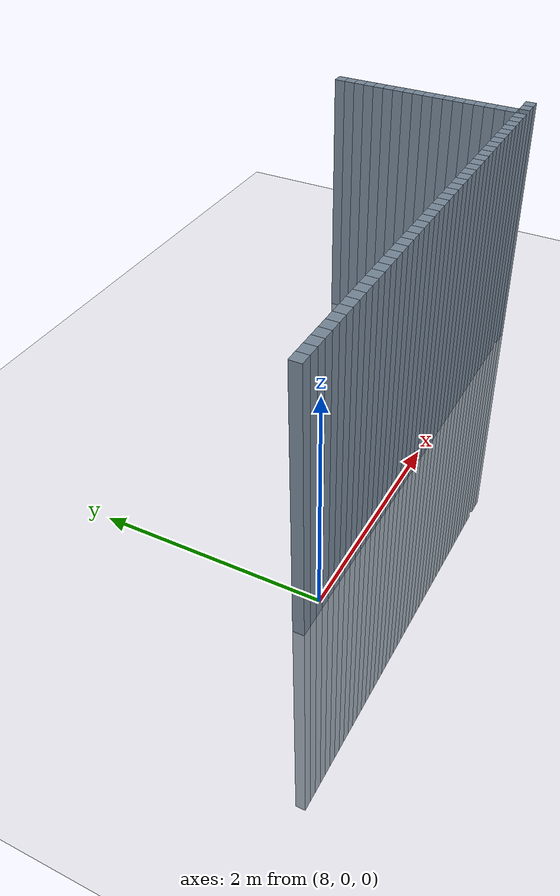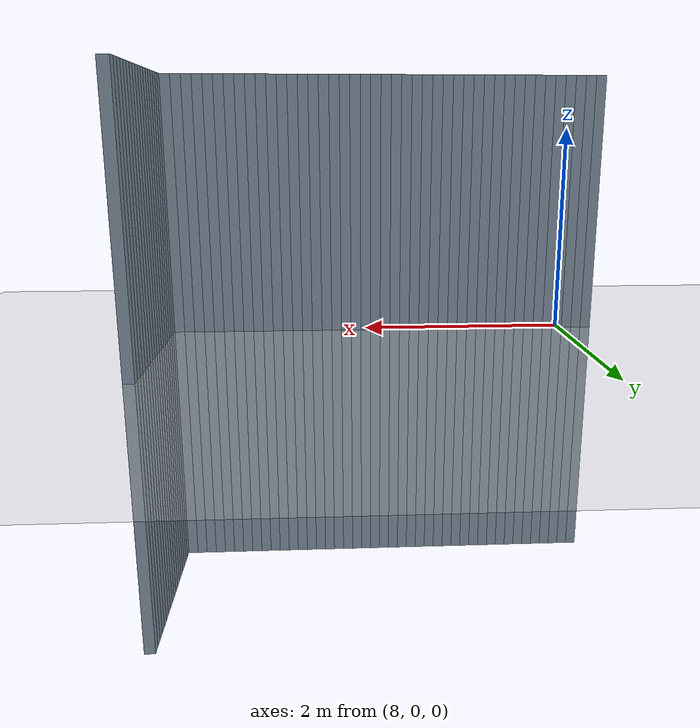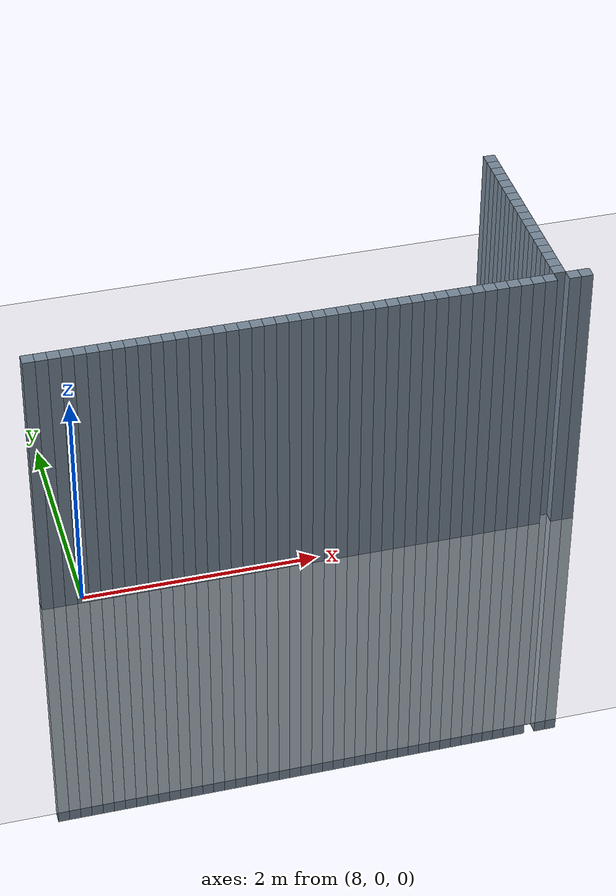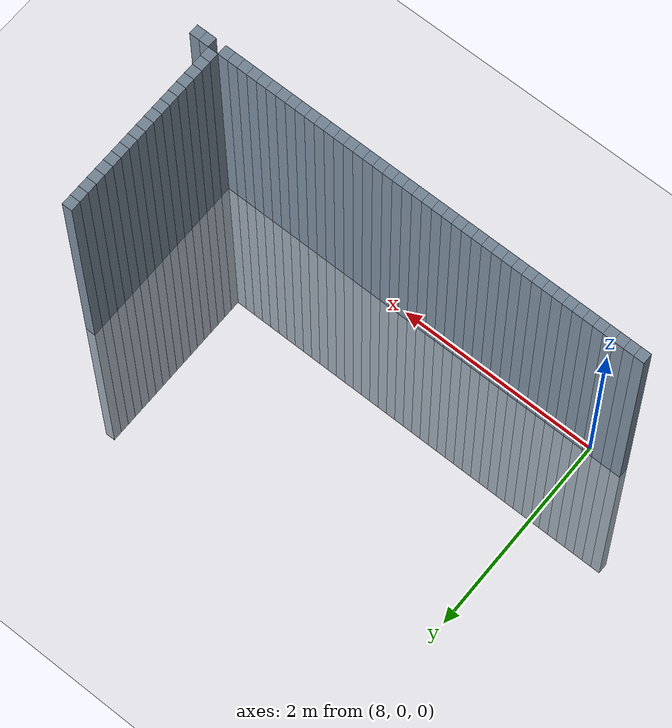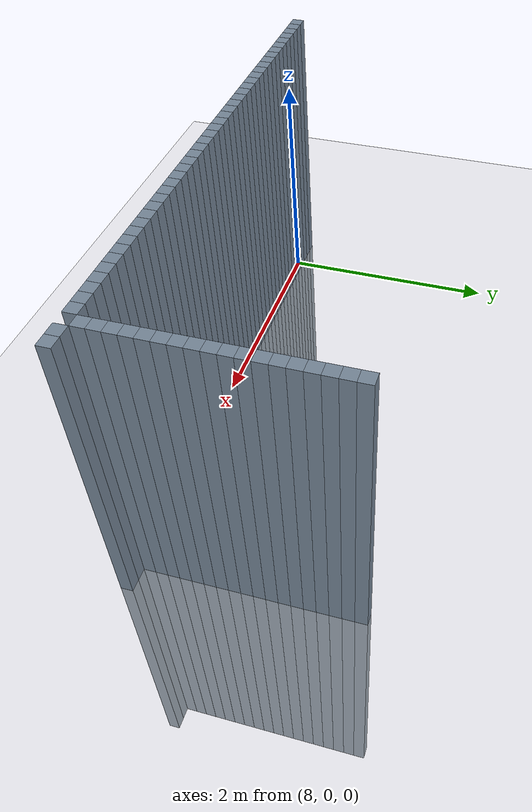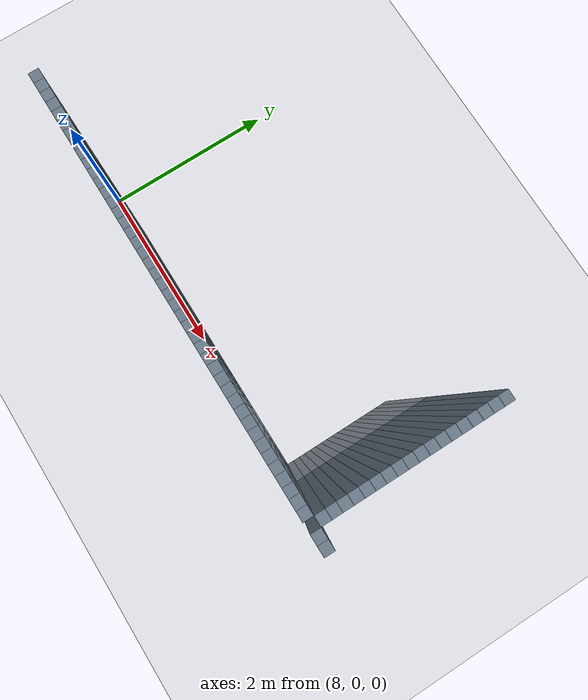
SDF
<sdf version="1.6">
 <world name="default">
  <model name="ground_plane">
   <static>1</static>
   <link name="link">
    <collision name="collision">
     <geometry><plane><normal>0 0 1</normal><size>100 100</size></plane></geometry>
     <surface><friction><ode><mu>100</mu><mu2>50</mu2></ode></friction></surface>
    </collision>
    <visual name="visual">
     <cast_shadows>0</cast_shadows>
     <geometry><plane><normal>0 0 1</normal><size>100 100</size></plane></geometry>
     <material>
      <script><uri>file://media/materials/scripts/gazebo.material</uri><name>Gazebo/Grey</name></script>
     </material>
    </visual>
   </link>
  </model>
  <model name="unit_cylinder_426">
   <static>1</static>
   <pose>7.7 0 0 0 -0 0</pose>
   <link name="link">
    <inertial>
     <mass>1</mass>
     <inertia><ixx>0.145833</ixx><ixy>0</ixy><ixz>0</ixz><iyy>0.145833</iyy><iyz>0</iyz><izz>0.125</izz></inertia>
    </inertial>
    <collision name="collision"><geometry><box><size>0.1 0.1 5</size></box></geometry></collision>
    <visual name="visual">
     <geometry><box><size>0.1 0.1 5</size></box></geometry>
     <material><ambient>0.466667 0.533333 0.6 1</ambient><diffuse>0.466667 0.533333 0.6 1</diffuse></material>
     <material>
      <script><name>Gazebo/Grey</name><uri>file://media/materials/scripts/gazebo.material</uri></script>
     </material>
    </visual>
   </link>
  </model>
  <model name="unit_cylinder_430">
   <static>1</static>
   <pose>7.8 0 0 0 -0 0</pose>
   <link name="link">
    <inertial>
     <mass>1</mass>
     <inertia><ixx>0.145833</ixx><ixy>0</ixy><ixz>0</ixz><iyy>0.145833</iyy><iyz>0</iyz><izz>0.125</izz></inertia>
    </inertial>
    <collision name="collision"><geometry><box><size>0.1 0.1 5</size></box></geometry></collision>
    <visual name="visual">
     <geometry><box><size>0.1 0.1 5</size></box></geometry>
     <material><ambient>0.466667 0.533333 0.6 1</ambient><diffuse>0.466667 0.533333 0.6 1</diffuse></material>
     <material>
      <script><name>Gazebo/Grey</name><uri>file://media/materials/scripts/gazebo.material</uri></script>
     </material>
    </visual>
   </link>
  </model>
  <model name="unit_cylinder_434">
   <static>1</static>
   <pose>7.9 0 0 0 -0 0</pose>
   <link name="link">
    <inertial>
     <mass>1</mass>
     <inertia><ixx>0.145833</ixx><ixy>0</ixy><ixz>0</ixz><iyy>0.145833</iyy><iyz>0</iyz><izz>0.125</izz></inertia>
    </inertial>
    <collision name="collision"><geometry><box><size>0.1 0.1 5</size></box></geometry></collision>
    <visual name="visual">
     <geometry><box><size>0.1 0.1 5</size></box></geometry>
     <material><ambient>0.466667 0.533333 0.6 1</ambient><diffuse>0.466667 0.533333 0.6 1</diffuse></material>
     <material>
      <script><name>Gazebo/Grey</name><uri>file://media/materials/scripts/gazebo.material</uri></script>
     </material>
    </visual>
   </link>
  </model>
  <model name="unit_cylinder_438">
   <static>1</static>
   <pose>8 0 0 0 -0 0</pose>
   <link name="link">
    <inertial>
     <mass>1</mass>
     <inertia><ixx>0.145833</ixx><ixy>0</ixy><ixz>0</ixz><iyy>0.145833</iyy><iyz>0</iyz><izz>0.125</izz></inertia>
    </inertial>
    <collision name="collision"><geometry><box><size>0.1 0.1 5</size></box></geometry></collision>
    <visual name="visual">
     <geometry><box><size>0.1 0.1 5</size></box></geometry>
     <material><ambient>0.466667 0.533333 0.6 1</ambient><diffuse>0.466667 0.533333 0.6 1</diffuse></material>
     <material>
      <script><name>Gazebo/Grey</name><uri>file://media/materials/scripts/gazebo.material</uri></script>
     </material>
    </visual>
   </link>
  </model>
  <model name="unit_cylinder_442">
   <static>1</static>
   <pose>8.1 0 0 0 -0 0</pose>
   <link name="link">
    <inertial>
     <mass>1</mass>
     <inertia><ixx>0.145833</ixx><ixy>0</ixy><ixz>0</ixz><iyy>0.145833</iyy><iyz>0</iyz><izz>0.125</izz></inertia>
    </inertial>
    <collision name="collision"><geometry><box><size>0.1 0.1 5</size></box></geometry></collision>
    <visual name="visual">
     <geometry><box><size>0.1 0.1 5</size></box></geometry>
     <material><ambient>0.466667 0.533333 0.6 1</ambient><diffuse>0.466667 0.533333 0.6 1</diffuse></material>
     <material>
      <script><name>Gazebo/Grey</name><uri>file://media/materials/scripts/gazebo.material</uri></script>
     </material>
    </visual>
   </link>
  </model>
  <model name="unit_cylinder_446">
   <static>1</static>
   <pose>8.2 0 0 0 -0 0</pose>
   <link name="link">
    <inertial>
     <mass>1</mass>
     <inertia><ixx>0.145833</ixx><ixy>0</ixy><ixz>0</ixz><iyy>0.145833</iyy><iyz>0</iyz><izz>0.125</izz></inertia>
    </inertial>
    <collision name="collision"><geometry><box><size>0.1 0.1 5</size></box></geometry></collision>
    <visual name="visual">
     <geometry><box><size>0.1 0.1 5</size></box></geometry>
     <material><ambient>0.466667 0.533333 0.6 1</ambient><diffuse>0.466667 0.533333 0.6 1</diffuse></material>
     <material>
      <script><name>Gazebo/Grey</name><uri>file://media/materials/scripts/gazebo.material</uri></script>
     </material>
    </visual>
   </link>
  </model>
  <model name="unit_cylinder_450">
   <static>1</static>
   <pose>8.3 0 0 0 -0 0</pose>
   <link name="link">
    <inertial>
     <mass>1</mass>
     <inertia><ixx>0.145833</ixx><ixy>0</ixy><ixz>0</ixz><iyy>0.145833</iyy><iyz>0</iyz><izz>0.125</izz></inertia>
    </inertial>
    <collision name="collision"><geometry><box><size>0.1 0.1 5</size></box></geometry></collision>
    <visual name="visual">
     <geometry><box><size>0.1 0.1 5</size></box></geometry>
     <material><ambient>0.466667 0.533333 0.6 1</ambient><diffuse>0.466667 0.533333 0.6 1</diffuse></material>
     <material>
      <script><name>Gazebo/Grey</name><uri>file://media/materials/scripts/gazebo.material</uri></script>
     </material>
    </visual>
   </link>
  </model>
  <model name="unit_cylinder_454">
   <static>1</static>
   <pose>8.4 0 0 0 -0 0</pose>
   <link name="link">
    <inertial>
     <mass>1</mass>
     <inertia><ixx>0.145833</ixx><ixy>0</ixy><ixz>0</ixz><iyy>0.145833</iyy><iyz>0</iyz><izz>0.125</izz></inertia>
    </inertial>
    <collision name="collision"><geometry><box><size>0.1 0.1 5</size></box></geometry></collision>
    <visual name="visual">
     <geometry><box><size>0.1 0.1 5</size></box></geometry>
     <material><ambient>0.466667 0.533333 0.6 1</ambient><diffuse>0.466667 0.533333 0.6 1</diffuse></material>
     <material>
      <script><name>Gazebo/Grey</name><uri>file://media/materials/scripts/gazebo.material</uri></script>
     </material>
    </visual>
   </link>
  </model>
  <model name="unit_cylinder_458">
   <static>1</static>
   <pose>8.5 0 0 0 -0 0</pose>
   <link name="link">
    <inertial>
     <mass>1</mass>
     <inertia><ixx>0.145833</ixx><ixy>0</ixy><ixz>0</ixz><iyy>0.145833</iyy><iyz>0</iyz><izz>0.125</izz></inertia>
    </inertial>
    <collision name="collision"><geometry><box><size>0.1 0.1 5</size></box></geometry></collision>
    <visual name="visual">
     <geometry><box><size>0.1 0.1 5</size></box></geometry>
     <material><ambient>0.466667 0.533333 0.6 1</ambient><diffuse>0.466667 0.533333 0.6 1</diffuse></material>
     <material>
      <script><name>Gazebo/Grey</name><uri>file://media/materials/scripts/gazebo.material</uri></script>
     </material>
    </visual>
   </link>
  </model>
  <model name="unit_cylinder_462">
   <static>1</static>
   <pose>8.6 0 0 0 -0 0</pose>
   <link name="link">
    <inertial>
     <mass>1</mass>
     <inertia><ixx>0.145833</ixx><ixy>0</ixy><ixz>0</ixz><iyy>0.145833</iyy><iyz>0</iyz><izz>0.125</izz></inertia>
    </inertial>
    <collision name="collision"><geometry><box><size>0.1 0.1 5</size></box></geometry></collision>
    <visual name="visual">
     <geometry><box><size>0.1 0.1 5</size></box></geometry>
     <material><ambient>0.466667 0.533333 0.6 1</ambient><diffuse>0.466667 0.533333 0.6 1</diffuse></material>
     <material>
      <script><name>Gazebo/Grey</name><uri>file://media/materials/scripts/gazebo.material</uri></script>
     </material>
    </visual>
   </link>
  </model>
  <model name="unit_cylinder_466">
   <static>1</static>
   <pose>8.7 0 0 0 -0 0</pose>
   <link name="link">
    <inertial>
     <mass>1</mass>
     <inertia><ixx>0.145833</ixx><ixy>0</ixy><ixz>0</ixz><iyy>0.145833</iyy><iyz>0</iyz><izz>0.125</izz></inertia>
    </inertial>
    <collision name="collision"><geometry><box><size>0.1 0.1 5</size></box></geometry></collision>
    <visual name="visual">
     <geometry><box><size>0.1 0.1 5</size></box></geometry>
     <material><ambient>0.466667 0.533333 0.6 1</ambient><diffuse>0.466667 0.533333 0.6 1</diffuse></material>
     <material>
      <script><name>Gazebo/Grey</name><uri>file://media/materials/scripts/gazebo.material</uri></script>
     </material>
    </visual>
   </link>
  </model>
  <model name="unit_cylinder_470">
   <static>1</static>
   <pose>8.8 0 0 0 -0 0</pose>
   <link name="link">
    <inertial>
     <mass>1</mass>
     <inertia><ixx>0.145833</ixx><ixy>0</ixy><ixz>0</ixz><iyy>0.145833</iyy><iyz>0</iyz><izz>0.125</izz></inertia>
    </inertial>
    <collision name="collision"><geometry><box><size>0.1 0.1 5</size></box></geometry></collision>
    <visual name="visual">
     <geometry><box><size>0.1 0.1 5</size></box></geometry>
     <material><ambient>0.466667 0.533333 0.6 1</ambient><diffuse>0.466667 0.533333 0.6 1</diffuse></material>
     <material>
      <script><name>Gazebo/Grey</name><uri>file://media/materials/scripts/gazebo.material</uri></script>
     </material>
    </visual>
   </link>
  </model>
  <model name="unit_cylinder_474">
   <static>1</static>
   <pose>8.9 0 0 0 -0 0</pose>
   <link name="link">
    <inertial>
     <mass>1</mass>
     <inertia><ixx>0.145833</ixx><ixy>0</ixy><ixz>0</ixz><iyy>0.145833</iyy><iyz>0</iyz><izz>0.125</izz></inertia>
    </inertial>
    <collision name="collision"><geometry><box><size>0.1 0.1 5</size></box></geometry></collision>
    <visual name="visual">
     <geometry><box><size>0.1 0.1 5</size></box></geometry>
     <material><ambient>0.466667 0.533333 0.6 1</ambient><diffuse>0.466667 0.533333 0.6 1</diffuse></material>
     <material>
      <script><name>Gazebo/Grey</name><uri>file://media/materials/scripts/gazebo.material</uri></script>
     </material>
    </visual>
   </link>
  </model>
  <model name="unit_cylinder_478">
   <static>1</static>
   <pose>9 0 0 0 -0 0</pose>
   <link name="link">
    <inertial>
     <mass>1</mass>
     <inertia><ixx>0.145833</ixx><ixy>0</ixy><ixz>0</ixz><iyy>0.145833</iyy><iyz>0</iyz><izz>0.125</izz></inertia>
    </inertial>
    <collision name="collision"><geometry><box><size>0.1 0.1 5</size></box></geometry></collision>
    <visual name="visual">
     <geometry><box><size>0.1 0.1 5</size></box></geometry>
     <material><ambient>0.466667 0.533333 0.6 1</ambient><diffuse>0.466667 0.533333 0.6 1</diffuse></material>
     <material>
      <script><name>Gazebo/Grey</name><uri>file://media/materials/scripts/gazebo.material</uri></script>
     </material>
    </visual>
   </link>
  </model>
  <model name="unit_cylinder_482">
   <static>1</static>
   <pose>9.1 0 0 0 -0 0</pose>
   <link name="link">
    <inertial>
     <mass>1</mass>
     <inertia><ixx>0.145833</ixx><ixy>0</ixy><ixz>0</ixz><iyy>0.145833</iyy><iyz>0</iyz><izz>0.125</izz></inertia>
    </inertial>
    <collision name="collision"><geometry><box><size>0.1 0.1 5</size></box></geometry></collision>
    <visual name="visual">
     <geometry><box><size>0.1 0.1 5</size></box></geometry>
     <material><ambient>0.466667 0.533333 0.6 1</ambient><diffuse>0.466667 0.533333 0.6 1</diffuse></material>
     <material>
      <script><name>Gazebo/Grey</name><uri>file://media/materials/scripts/gazebo.material</uri></script>
     </material>
    </visual>
   </link>
  </model>
  <model name="unit_cylinder_486">
   <static>1</static>
   <pose>9.2 0 0 0 -0 0</pose>
   <link name="link">
    <inertial>
     <mass>1</mass>
     <inertia><ixx>0.145833</ixx><ixy>0</ixy><ixz>0</ixz><iyy>0.145833</iyy><iyz>0</iyz><izz>0.125</izz></inertia>
    </inertial>
    <collision name="collision"><geometry><box><size>0.1 0.1 5</size></box></geometry></collision>
    <visual name="visual">
     <geometry><box><size>0.1 0.1 5</size></box></geometry>
     <material><ambient>0.466667 0.533333 0.6 1</ambient><diffuse>0.466667 0.533333 0.6 1</diffuse></material>
     <material>
      <script><name>Gazebo/Grey</name><uri>file://media/materials/scripts/gazebo.material</uri></script>
     </material>
    </visual>
   </link>
  </model>
  <model name="unit_cylinder_490">
   <static>1</static>
   <pose>9.3 0 0 0 -0 0</pose>
   <link name="link">
    <inertial>
     <mass>1</mass>
     <inertia><ixx>0.145833</ixx><ixy>0</ixy><ixz>0</ixz><iyy>0.145833</iyy><iyz>0</iyz><izz>0.125</izz></inertia>
    </inertial>
    <collision name="collision"><geometry><box><size>0.1 0.1 5</size></box></geometry></collision>
    <visual name="visual">
     <geometry><box><size>0.1 0.1 5</size></box></geometry>
     <material><ambient>0.466667 0.533333 0.6 1</ambient><diffuse>0.466667 0.533333 0.6 1</diffuse></material>
     <material>
      <script><name>Gazebo/Grey</name><uri>file://media/materials/scripts/gazebo.material</uri></script>
     </material>
    </visual>
   </link>
  </model>
  <model name="unit_cylinder_494">
   <static>1</static>
   <pose>9.4 0 0 0 -0 0</pose>
   <link name="link">
    <inertial>
     <mass>1</mass>
     <inertia><ixx>0.145833</ixx><ixy>0</ixy><ixz>0</ixz><iyy>0.145833</iyy><iyz>0</iyz><izz>0.125</izz></inertia>
    </inertial>
    <collision name="collision"><geometry><box><size>0.1 0.1 5</size></box></geometry></collision>
    <visual name="visual">
     <geometry><box><size>0.1 0.1 5</size></box></geometry>
     <material><ambient>0.466667 0.533333 0.6 1</ambient><diffuse>0.466667 0.533333 0.6 1</diffuse></material>
     <material>
      <script><name>Gazebo/Grey</name><uri>file://media/materials/scripts/gazebo.material</uri></script>
     </material>
    </visual>
   </link>
  </model>
  <model name="unit_cylinder_498">
   <static>1</static>
   <pose>9.5 0 0 0 -0 0</pose>
   <link name="link">
    <inertial>
     <mass>1</mass>
     <inertia><ixx>0.145833</ixx><ixy>0</ixy><ixz>0</ixz><iyy>0.145833</iyy><iyz>0</iyz><izz>0.125</izz></inertia>
    </inertial>
    <collision name="collision"><geometry><box><size>0.1 0.1 5</size></box></geometry></collision>
    <visual name="visual">
     <geometry><box><size>0.1 0.1 5</size></box></geometry>
     <material><ambient>0.466667 0.533333 0.6 1</ambient><diffuse>0.466667 0.533333 0.6 1</diffuse></material>
     <material>
      <script><name>Gazebo/Grey</name><uri>file://media/materials/scripts/gazebo.material</uri></script>
     </material>
    </visual>
   </link>
  </model>
  <model name="unit_cylinder_502">
   <static>1</static>
   <pose>9.6 0 0 0 -0 0</pose>
   <link name="link">
    <inertial>
     <mass>1</mass>
     <inertia><ixx>0.145833</ixx><ixy>0</ixy><ixz>0</ixz><iyy>0.145833</iyy><iyz>0</iyz><izz>0.125</izz></inertia>
    </inertial>
    <collision name="collision"><geometry><box><size>0.1 0.1 5</size></box></geometry></collision>
    <visual name="visual">
     <geometry><box><size>0.1 0.1 5</size></box></geometry>
     <material><ambient>0.466667 0.533333 0.6 1</ambient><diffuse>0.466667 0.533333 0.6 1</diffuse></material>
     <material>
      <script><name>Gazebo/Grey</name><uri>file://media/materials/scripts/gazebo.material</uri></script>
     </material>
    </visual>
   </link>
  </model>
  <model name="unit_cylinder_506">
   <static>1</static>
   <pose>9.7 0 0 0 -0 0</pose>
   <link name="link">
    <inertial>
     <mass>1</mass>
     <inertia><ixx>0.145833</ixx><ixy>0</ixy><ixz>0</ixz><iyy>0.145833</iyy><iyz>0</iyz><izz>0.125</izz></inertia>
    </inertial>
    <collision name="collision"><geometry><box><size>0.1 0.1 5</size></box></geometry></collision>
    <visual name="visual">
     <geometry><box><size>0.1 0.1 5</size></box></geometry>
     <material><ambient>0.466667 0.533333 0.6 1</ambient><diffuse>0.466667 0.533333 0.6 1</diffuse></material>
     <material>
      <script><name>Gazebo/Grey</name><uri>file://media/materials/scripts/gazebo.material</uri></script>
     </material>
    </visual>
   </link>
  </model>
  <model name="unit_cylinder_510">
   <static>1</static>
   <pose>9.8 0 0 0 -0 0</pose>
   <link name="link">
    <inertial>
     <mass>1</mass>
     <inertia><ixx>0.145833</ixx><ixy>0</ixy><ixz>0</ixz><iyy>0.145833</iyy><iyz>0</iyz><izz>0.125</izz></inertia>
    </inertial>
    <collision name="collision"><geometry><box><size>0.1 0.1 5</size></box></geometry></collision>
    <visual name="visual">
     <geometry><box><size>0.1 0.1 5</size></box></geometry>
     <material><ambient>0.466667 0.533333 0.6 1</ambient><diffuse>0.466667 0.533333 0.6 1</diffuse></material>
     <material>
      <script><name>Gazebo/Grey</name><uri>file://media/materials/scripts/gazebo.material</uri></script>
     </material>
    </visual>
   </link>
  </model>
  <model name="unit_cylinder_514">
   <static>1</static>
   <pose>9.9 0 0 0 -0 0</pose>
   <link name="link">
    <inertial>
     <mass>1</mass>
     <inertia><ixx>0.145833</ixx><ixy>0</ixy><ixz>0</ixz><iyy>0.145833</iyy><iyz>0</iyz><izz>0.125</izz></inertia>
    </inertial>
    <collision name="collision"><geometry><box><size>0.1 0.1 5</size></box></geometry></collision>
    <visual name="visual">
     <geometry><box><size>0.1 0.1 5</size></box></geometry>
     <material><ambient>0.466667 0.533333 0.6 1</ambient><diffuse>0.466667 0.533333 0.6 1</diffuse></material>
     <material>
      <script><name>Gazebo/Grey</name><uri>file://media/materials/scripts/gazebo.material</uri></script>
     </material>
    </visual>
   </link>
  </model>
  <model name="unit_cylinder_518">
   <static>1</static>
   <pose>10 0 0 0 -0 0</pose>
   <link name="link">
    <inertial>
     <mass>1</mass>
     <inertia><ixx>0.145833</ixx><ixy>0</ixy><ixz>0</ixz><iyy>0.145833</iyy><iyz>0</iyz><izz>0.125</izz></inertia>
    </inertial>
    <collision name="collision"><geometry><box><size>0.1 0.1 5</size></box></geometry></collision>
    <visual name="visual">
     <geometry><box><size>0.1 0.1 5</size></box></geometry>
     <material><ambient>0.466667 0.533333 0.6 1</ambient><diffuse>0.466667 0.533333 0.6 1</diffuse></material>
     <material>
      <script><name>Gazebo/Grey</name><uri>file://media/materials/scripts/gazebo.material</uri></script>
     </material>
    </visual>
   </link>
  </model>
  <model name="unit_cylinder_522">
   <static>1</static>
   <pose>10.1 0 0 0 -0 0</pose>
   <link name="link">
    <inertial>
     <mass>1</mass>
     <inertia><ixx>0.145833</ixx><ixy>0</ixy><ixz>0</ixz><iyy>0.145833</iyy><iyz>0</iyz><izz>0.125</izz></inertia>
    </inertial>
    <collision name="collision"><geometry><box><size>0.1 0.1 5</size></box></geometry></collision>
    <visual name="visual">
     <geometry><box><size>0.1 0.1 5</size></box></geometry>
     <material><ambient>0.466667 0.533333 0.6 1</ambient><diffuse>0.466667 0.533333 0.6 1</diffuse></material>
     <material>
      <script><name>Gazebo/Grey</name><uri>file://media/materials/scripts/gazebo.material</uri></script>
     </material>
    </visual>
   </link>
  </model>
  <model name="unit_cylinder_526">
   <static>1</static>
   <pose>10.2 0 0 0 -0 0</pose>
   <link name="link">
    <inertial>
     <mass>1</mass>
     <inertia><ixx>0.145833</ixx><ixy>0</ixy><ixz>0</ixz><iyy>0.145833</iyy><iyz>0</iyz><izz>0.125</izz></inertia>
    </inertial>
    <collision name="collision"><geometry><box><size>0.1 0.1 5</size></box></geometry></collision>
    <visual name="visual">
     <geometry><box><size>0.1 0.1 5</size></box></geometry>
     <material><ambient>0.466667 0.533333 0.6 1</ambient><diffuse>0.466667 0.533333 0.6 1</diffuse></material>
     <material>
      <script><name>Gazebo/Grey</name><uri>file://media/materials/scripts/gazebo.material</uri></script>
     </material>
    </visual>
   </link>
  </model>
  <model name="unit_cylinder_530">
   <static>1</static>
   <pose>10.3 0 0 0 -0 0</pose>
   <link name="link">
    <inertial>
     <mass>1</mass>
     <inertia><ixx>0.145833</ixx><ixy>0</ixy><ixz>0</ixz><iyy>0.145833</iyy><iyz>0</iyz><izz>0.125</izz></inertia>
    </inertial>
    <collision name="collision"><geometry><box><size>0.1 0.1 5</size></box></geometry></collision>
    <visual name="visual">
     <geometry><box><size>0.1 0.1 5</size></box></geometry>
     <material><ambient>0.466667 0.533333 0.6 1</ambient><diffuse>0.466667 0.533333 0.6 1</diffuse></material>
     <material>
      <script><name>Gazebo/Grey</name><uri>file://media/materials/scripts/gazebo.material</uri></script>
     </material>
    </visual>
   </link>
  </model>
  <model name="unit_cylinder_534">
   <static>1</static>
   <pose>10.4 0 0 0 -0 0</pose>
   <link name="link">
    <inertial>
     <mass>1</mass>
     <inertia><ixx>0.145833</ixx><ixy>0</ixy><ixz>0</ixz><iyy>0.145833</iyy><iyz>0</iyz><izz>0.125</izz></inertia>
    </inertial>
    <collision name="collision"><geometry><box><size>0.1 0.1 5</size></box></geometry></collision>
    <visual name="visual">
     <geometry><box><size>0.1 0.1 5</size></box></geometry>
     <material><ambient>0.466667 0.533333 0.6 1</ambient><diffuse>0.466667 0.533333 0.6 1</diffuse></material>
     <material>
      <script><name>Gazebo/Grey</name><uri>file://media/materials/scripts/gazebo.material</uri></script>
     </material>
    </visual>
   </link>
  </model>
  <model name="unit_cylinder_538">
   <static>1</static>
   <pose>10.5 0 0 0 -0 0</pose>
   <link name="link">
    <inertial>
     <mass>1</mass>
     <inertia><ixx>0.145833</ixx><ixy>0</ixy><ixz>0</ixz><iyy>0.145833</iyy><iyz>0</iyz><izz>0.125</izz></inertia>
    </inertial>
    <collision name="collision"><geometry><box><size>0.1 0.1 5</size></box></geometry></collision>
    <visual name="visual">
     <geometry><box><size>0.1 0.1 5</size></box></geometry>
     <material><ambient>0.466667 0.533333 0.6 1</ambient><diffuse>0.466667 0.533333 0.6 1</diffuse></material>
     <material>
      <script><name>Gazebo/Grey</name><uri>file://media/materials/scripts/gazebo.material</uri></script>
     </material>
    </visual>
   </link>
  </model>
  <model name="unit_cylinder_542">
   <static>1</static>
   <pose>10.6 0 0 0 -0 0</pose>
   <link name="link">
    <inertial>
     <mass>1</mass>
     <inertia><ixx>0.145833</ixx><ixy>0</ixy><ixz>0</ixz><iyy>0.145833</iyy><iyz>0</iyz><izz>0.125</izz></inertia>
    </inertial>
    <collision name="collision"><geometry><box><size>0.1 0.1 5</size></box></geometry></collision>
    <visual name="visual">
     <geometry><box><size>0.1 0.1 5</size></box></geometry>
     <material><ambient>0.466667 0.533333 0.6 1</ambient><diffuse>0.466667 0.533333 0.6 1</diffuse></material>
     <material>
      <script><name>Gazebo/Grey</name><uri>file://media/materials/scripts/gazebo.material</uri></script>
     </material>
    </visual>
   </link>
  </model>
  <model name="unit_cylinder_546">
   <static>1</static>
   <pose>10.7 0 0 0 -0 0</pose>
   <link name="link">
    <inertial>
     <mass>1</mass>
     <inertia><ixx>0.145833</ixx><ixy>0</ixy><ixz>0</ixz><iyy>0.145833</iyy><iyz>0</iyz><izz>0.125</izz></inertia>
    </inertial>
    <collision name="collision"><geometry><box><size>0.1 0.1 5</size></box></geometry></collision>
    <visual name="visual">
     <geometry><box><size>0.1 0.1 5</size></box></geometry>
     <material><ambient>0.466667 0.533333 0.6 1</ambient><diffuse>0.466667 0.533333 0.6 1</diffuse></material>
     <material>
      <script><name>Gazebo/Grey</name><uri>file://media/materials/scripts/gazebo.material</uri></script>
     </material>
    </visual>
   </link>
  </model>
  <model name="unit_cylinder_550">
   <static>1</static>
   <pose>10.8 0 0 0 -0 0</pose>
   <link name="link">
    <inertial>
     <mass>1</mass>
     <inertia><ixx>0.145833</ixx><ixy>0</ixy><ixz>0</ixz><iyy>0.145833</iyy><iyz>0</iyz><izz>0.125</izz></inertia>
    </inertial>
    <collision name="collision"><geometry><box><size>0.1 0.1 5</size></box></geometry></collision>
    <visual name="visual">
     <geometry><box><size>0.1 0.1 5</size></box></geometry>
     <material><ambient>0.466667 0.533333 0.6 1</ambient><diffuse>0.466667 0.533333 0.6 1</diffuse></material>
     <material>
      <script><name>Gazebo/Grey</name><uri>file://media/materials/scripts/gazebo.material</uri></script>
     </material>
    </visual>
   </link>
  </model>
  <model name="unit_cylinder_554">
   <static>1</static>
   <pose>10.9 0 0 0 -0 0</pose>
   <link name="link">
    <inertial>
     <mass>1</mass>
     <inertia><ixx>0.145833</ixx><ixy>0</ixy><ixz>0</ixz><iyy>0.145833</iyy><iyz>0</iyz><izz>0.125</izz></inertia>
    </inertial>
    <collision name="collision"><geometry><box><size>0.1 0.1 5</size></box></geometry></collision>
    <visual name="visual">
     <geometry><box><size>0.1 0.1 5</size></box></geometry>
     <material><ambient>0.466667 0.533333 0.6 1</ambient><diffuse>0.466667 0.533333 0.6 1</diffuse></material>
     <material>
      <script><name>Gazebo/Grey</name><uri>file://media/materials/scripts/gazebo.material</uri></script>
     </material>
    </visual>
   </link>
  </model>
  <model name="unit_cylinder_558">
   <static>1</static>
   <pose>11 0 0 0 -0 0</pose>
   <link name="link">
    <inertial>
     <mass>1</mass>
     <inertia><ixx>0.145833</ixx><ixy>0</ixy><ixz>0</ixz><iyy>0.145833</iyy><iyz>0</iyz><izz>0.125</izz></inertia>
    </inertial>
    <collision name="collision"><geometry><box><size>0.1 0.1 5</size></box></geometry></collision>
    <visual name="visual">
     <geometry><box><size>0.1 0.1 5</size></box></geometry>
     <material><ambient>0.466667 0.533333 0.6 1</ambient><diffuse>0.466667 0.533333 0.6 1</diffuse></material>
     <material>
      <script><name>Gazebo/Grey</name><uri>file://media/materials/scripts/gazebo.material</uri></script>
     </material>
    </visual>
   </link>
  </model>
  <model name="unit_cylinder_562">
   <static>1</static>
   <pose>11.1 0 0 0 -0 0</pose>
   <link name="link">
    <inertial>
     <mass>1</mass>
     <inertia><ixx>0.145833</ixx><ixy>0</ixy><ixz>0</ixz><iyy>0.145833</iyy><iyz>0</iyz><izz>0.125</izz></inertia>
    </inertial>
    <collision name="collision"><geometry><box><size>0.1 0.1 5</size></box></geometry></collision>
    <visual name="visual">
     <geometry><box><size>0.1 0.1 5</size></box></geometry>
     <material><ambient>0.466667 0.533333 0.6 1</ambient><diffuse>0.466667 0.533333 0.6 1</diffuse></material>
     <material>
      <script><name>Gazebo/Grey</name><uri>file://media/materials/scripts/gazebo.material</uri></script>
     </material>
    </visual>
   </link>
  </model>
  <model name="unit_cylinder_566">
   <static>1</static>
   <pose>11.2 0 0 0 -0 0</pose>
   <link name="link">
    <inertial>
     <mass>1</mass>
     <inertia><ixx>0.145833</ixx><ixy>0</ixy><ixz>0</ixz><iyy>0.145833</iyy><iyz>0</iyz><izz>0.125</izz></inertia>
    </inertial>
    <collision name="collision"><geometry><box><size>0.1 0.1 5</size></box></geometry></collision>
    <visual name="visual">
     <geometry><box><size>0.1 0.1 5</size></box></geometry>
     <material><ambient>0.466667 0.533333 0.6 1</ambient><diffuse>0.466667 0.533333 0.6 1</diffuse></material>
     <material>
      <script><name>Gazebo/Grey</name><uri>file://media/materials/scripts/gazebo.material</uri></script>
     </material>
    </visual>
   </link>
  </model>
  <model name="unit_cylinder_570">
   <static>1</static>
   <pose>11.3 0 0 0 -0 0</pose>
   <link name="link">
    <inertial>
     <mass>1</mass>
     <inertia><ixx>0.145833</ixx><ixy>0</ixy><ixz>0</ixz><iyy>0.145833</iyy><iyz>0</iyz><izz>0.125</izz></inertia>
    </inertial>
    <collision name="collision"><geometry><box><size>0.1 0.1 5</size></box></geometry></collision>
    <visual name="visual">
     <geometry><box><size>0.1 0.1 5</size></box></geometry>
     <material><ambient>0.466667 0.533333 0.6 1</ambient><diffuse>0.466667 0.533333 0.6 1</diffuse></material>
     <material>
      <script><name>Gazebo/Grey</name><uri>file://media/materials/scripts/gazebo.material</uri></script>
     </material>
    </visual>
   </link>
  </model>
  <model name="unit_cylinder_574">
   <static>1</static>
   <pose>11.4 0 0 0 -0 0</pose>
   <link name="link">
    <inertial>
     <mass>1</mass>
     <inertia><ixx>0.145833</ixx><ixy>0</ixy><ixz>0</ixz><iyy>0.145833</iyy><iyz>0</iyz><izz>0.125</izz></inertia>
    </inertial>
    <collision name="collision"><geometry><box><size>0.1 0.1 5</size></box></geometry></collision>
    <visual name="visual">
     <geometry><box><size>0.1 0.1 5</size></box></geometry>
     <material><ambient>0.466667 0.533333 0.6 1</ambient><diffuse>0.466667 0.533333 0.6 1</diffuse></material>
     <material>
      <script><name>Gazebo/Grey</name><uri>file://media/materials/scripts/gazebo.material</uri></script>
     </material>
    </visual>
   </link>
  </model>
  <model name="unit_cylinder_578">
   <static>1</static>
   <pose>11.5 0 0 0 -0 0</pose>
   <link name="link">
    <inertial>
     <mass>1</mass>
     <inertia><ixx>0.145833</ixx><ixy>0</ixy><ixz>0</ixz><iyy>0.145833</iyy><iyz>0</iyz><izz>0.125</izz></inertia>
    </inertial>
    <collision name="collision"><geometry><box><size>0.1 0.1 5</size></box></geometry></collision>
    <visual name="visual">
     <geometry><box><size>0.1 0.1 5</size></box></geometry>
     <material><ambient>0.466667 0.533333 0.6 1</ambient><diffuse>0.466667 0.533333 0.6 1</diffuse></material>
     <material>
      <script><name>Gazebo/Grey</name><uri>file://media/materials/scripts/gazebo.material</uri></script>
     </material>
    </visual>
   </link>
  </model>
  <model name="unit_cylinder_582">
   <static>1</static>
   <pose>11.6 0 0 0 -0 0</pose>
   <link name="link">
    <inertial>
     <mass>1</mass>
     <inertia><ixx>0.145833</ixx><ixy>0</ixy><ixz>0</ixz><iyy>0.145833</iyy><iyz>0</iyz><izz>0.125</izz></inertia>
    </inertial>
    <collision name="collision"><geometry><box><size>0.1 0.1 5</size></box></geometry></collision>
    <visual name="visual">
     <geometry><box><size>0.1 0.1 5</size></box></geometry>
     <material><ambient>0.466667 0.533333 0.6 1</ambient><diffuse>0.466667 0.533333 0.6 1</diffuse></material>
     <material>
      <script><name>Gazebo/Grey</name><uri>file://media/materials/scripts/gazebo.material</uri></script>
     </material>
    </visual>
   </link>
  </model>
  <model name="unit_cylinder_586">
   <static>1</static>
   <pose>11.7 0 0 0 -0 0</pose>
   <link name="link">
    <inertial>
     <mass>1</mass>
     <inertia><ixx>0.145833</ixx><ixy>0</ixy><ixz>0</ixz><iyy>0.145833</iyy><iyz>0</iyz><izz>0.125</izz></inertia>
    </inertial>
    <collision name="collision"><geometry><box><size>0.1 0.1 5</size></box></geometry></collision>
    <visual name="visual">
     <geometry><box><size>0.1 0.1 5</size></box></geometry>
     <material><ambient>0.466667 0.533333 0.6 1</ambient><diffuse>0.466667 0.533333 0.6 1</diffuse></material>
     <material>
      <script><name>Gazebo/Grey</name><uri>file://media/materials/scripts/gazebo.material</uri></script>
     </material>
    </visual>
   </link>
  </model>
  <model name="unit_cylinder_590">
   <static>1</static>
   <pose>11.8 0 0 0 -0 0</pose>
   <link name="link">
    <inertial>
     <mass>1</mass>
     <inertia><ixx>0.145833</ixx><ixy>0</ixy><ixz>0</ixz><iyy>0.145833</iyy><iyz>0</iyz><izz>0.125</izz></inertia>
    </inertial>
    <collision name="collision"><geometry><box><size>0.1 0.1 5</size></box></geometry></collision>
    <visual name="visual">
     <geometry><box><size>0.1 0.1 5</size></box></geometry>
     <material><ambient>0.466667 0.533333 0.6 1</ambient><diffuse>0.466667 0.533333 0.6 1</diffuse></material>
     <material>
      <script><name>Gazebo/Grey</name><uri>file://media/materials/scripts/gazebo.material</uri></script>
     </material>
    </visual>
   </link>
  </model>
  <model name="unit_cylinder_594">
   <static>1</static>
   <pose>11.9 0 0 0 -0 0</pose>
   <link name="link">
    <inertial>
     <mass>1</mass>
     <inertia><ixx>0.145833</ixx><ixy>0</ixy><ixz>0</ixz><iyy>0.145833</iyy><iyz>0</iyz><izz>0.125</izz></inertia>
    </inertial>
    <collision name="collision"><geometry><box><size>0.1 0.1 5</size></box></geometry></collision>
    <visual name="visual">
     <geometry><box><size>0.1 0.1 5</size></box></geometry>
     <material><ambient>0.466667 0.533333 0.6 1</ambient><diffuse>0.466667 0.533333 0.6 1</diffuse></material>
     <material>
      <script><name>Gazebo/Grey</name><uri>file://media/materials/scripts/gazebo.material</uri></script>
     </material>
    </visual>
   </link>
  </model>
  <model name="unit_cylinder_599">
   <static>1</static>
   <pose>12 0.1 0 0 -0 0</pose>
   <link name="link">
    <inertial>
     <mass>1</mass>
     <inertia><ixx>0.145833</ixx><ixy>0</ixy><ixz>0</ixz><iyy>0.145833</iyy><iyz>0</iyz><izz>0.125</izz></inertia>
    </inertial>
    <collision name="collision"><geometry><box><size>0.1 0.1 5</size></box></geometry></collision>
    <visual name="visual">
     <geometry><box><size>0.1 0.1 5</size></box></geometry>
     <material><ambient>0.466667 0.533333 0.6 1</ambient><diffuse>0.466667 0.533333 0.6 1</diffuse></material>
     <material>
      <script><name>Gazebo/Grey</name><uri>file://media/materials/scripts/gazebo.material</uri></script>
     </material>
    </visual>
   </link>
  </model>
  <model name="unit_cylinder_600">
   <static>1</static>
   <pose>12 0.2 0 0 -0 0</pose>
   <link name="link">
    <inertial>
     <mass>1</mass>
     <inertia><ixx>0.145833</ixx><ixy>0</ixy><ixz>0</ixz><iyy>0.145833</iyy><iyz>0</iyz><izz>0.125</izz></inertia>
    </inertial>
    <collision name="collision"><geometry><box><size>0.1 0.1 5</size></box></geometry></collision>
    <visual name="visual">
     <geometry><box><size>0.1 0.1 5</size></box></geometry>
     <material><ambient>0.466667 0.533333 0.6 1</ambient><diffuse>0.466667 0.533333 0.6 1</diffuse></material>
     <material>
      <script><name>Gazebo/Grey</name><uri>file://media/materials/scripts/gazebo.material</uri></script>
     </material>
    </visual>
   </link>
  </model>
  <model name="unit_cylinder_601">
   <static>1</static>
   <pose>12 0.3 0 0 -0 0</pose>
   <link name="link">
    <inertial>
     <mass>1</mass>
     <inertia><ixx>0.145833</ixx><ixy>0</ixy><ixz>0</ixz><iyy>0.145833</iyy><iyz>0</iyz><izz>0.125</izz></inertia>
    </inertial>
    <collision name="collision"><geometry><box><size>0.1 0.1 5</size></box></geometry></collision>
    <visual name="visual">
     <geometry><box><size>0.1 0.1 5</size></box></geometry>
     <material><ambient>0.466667 0.533333 0.6 1</ambient><diffuse>0.466667 0.533333 0.6 1</diffuse></material>
     <material>
      <script><name>Gazebo/Grey</name><uri>file://media/materials/scripts/gazebo.material</uri></script>
     </material>
    </visual>
   </link>
  </model>
  <model name="unit_cylinder_602">
   <static>1</static>
   <pose>12 0.4 0 0 -0 0</pose>
   <link name="link">
    <inertial>
     <mass>1</mass>
     <inertia><ixx>0.145833</ixx><ixy>0</ixy><ixz>0</ixz><iyy>0.145833</iyy><iyz>0</iyz><izz>0.125</izz></inertia>
    </inertial>
    <collision name="collision"><geometry><box><size>0.1 0.1 5</size></box></geometry></collision>
    <visual name="visual">
     <geometry><box><size>0.1 0.1 5</size></box></geometry>
     <material><ambient>0.466667 0.533333 0.6 1</ambient><diffuse>0.466667 0.533333 0.6 1</diffuse></material>
     <material>
      <script><name>Gazebo/Grey</name><uri>file://media/materials/scripts/gazebo.material</uri></script>
     </material>
    </visual>
   </link>
  </model>
  <model name="unit_cylinder_603">
   <static>1</static>
   <pose>12 0.5 0 0 -0 0</pose>
   <link name="link">
    <inertial>
     <mass>1</mass>
     <inertia><ixx>0.145833</ixx><ixy>0</ixy><ixz>0</ixz><iyy>0.145833</iyy><iyz>0</iyz><izz>0.125</izz></inertia>
    </inertial>
    <collision name="collision"><geometry><box><size>0.1 0.1 5</size></box></geometry></collision>
    <visual name="visual">
     <geometry><box><size>0.1 0.1 5</size></box></geometry>
     <material><ambient>0.466667 0.533333 0.6 1</ambient><diffuse>0.466667 0.533333 0.6 1</diffuse></material>
     <material>
      <script><name>Gazebo/Grey</name><uri>file://media/materials/scripts/gazebo.material</uri></script>
     </material>
    </visual>
   </link>
  </model>
  <model name="unit_cylinder_604">
   <static>1</static>
   <pose>12 0.6 0 0 -0 0</pose>
   <link name="link">
    <inertial>
     <mass>1</mass>
     <inertia><ixx>0.145833</ixx><ixy>0</ixy><ixz>0</ixz><iyy>0.145833</iyy><iyz>0</iyz><izz>0.125</izz></inertia>
    </inertial>
    <collision name="collision"><geometry><box><size>0.1 0.1 5</size></box></geometry></collision>
    <visual name="visual">
     <geometry><box><size>0.1 0.1 5</size></box></geometry>
     <material><ambient>0.466667 0.533333 0.6 1</ambient><diffuse>0.466667 0.533333 0.6 1</diffuse></material>
     <material>
      <script><name>Gazebo/Grey</name><uri>file://media/materials/scripts/gazebo.material</uri></script>
     </material>
    </visual>
   </link>
  </model>
  <model name="unit_cylinder_605">
   <static>1</static>
   <pose>12 0.7 0 0 -0 0</pose>
   <link name="link">
    <inertial>
     <mass>1</mass>
     <inertia><ixx>0.145833</ixx><ixy>0</ixy><ixz>0</ixz><iyy>0.145833</iyy><iyz>0</iyz><izz>0.125</izz></inertia>
    </inertial>
    <collision name="collision"><geometry><box><size>0.1 0.1 5</size></box></geometry></collision>
    <visual name="visual">
     <geometry><box><size>0.1 0.1 5</size></box></geometry>
     <material><ambient>0.466667 0.533333 0.6 1</ambient><diffuse>0.466667 0.533333 0.6 1</diffuse></material>
     <material>
      <script><name>Gazebo/Grey</name><uri>file://media/materials/scripts/gazebo.material</uri></script>
     </material>
    </visual>
   </link>
  </model>
  <model name="unit_cylinder_606">
   <static>1</static>
   <pose>12 0.8 0 0 -0 0</pose>
   <link name="link">
    <inertial>
     <mass>1</mass>
     <inertia><ixx>0.145833</ixx><ixy>0</ixy><ixz>0</ixz><iyy>0.145833</iyy><iyz>0</iyz><izz>0.125</izz></inertia>
    </inertial>
    <collision name="collision"><geometry><box><size>0.1 0.1 5</size></box></geometry></collision>
    <visual name="visual">
     <geometry><box><size>0.1 0.1 5</size></box></geometry>
     <material><ambient>0.466667 0.533333 0.6 1</ambient><diffuse>0.466667 0.533333 0.6 1</diffuse></material>
     <material>
      <script><name>Gazebo/Grey</name><uri>file://media/materials/scripts/gazebo.material</uri></script>
     </material>
    </visual>
   </link>
  </model>
  <model name="unit_cylinder_607">
   <static>1</static>
   <pose>12 0.9 0 0 -0 0</pose>
   <link name="link">
    <inertial>
     <mass>1</mass>
     <inertia><ixx>0.145833</ixx><ixy>0</ixy><ixz>0</ixz><iyy>0.145833</iyy><iyz>0</iyz><izz>0.125</izz></inertia>
    </inertial>
    <collision name="collision"><geometry><box><size>0.1 0.1 5</size></box></geometry></collision>
    <visual name="visual">
     <geometry><box><size>0.1 0.1 5</size></box></geometry>
     <material><ambient>0.466667 0.533333 0.6 1</ambient><diffuse>0.466667 0.533333 0.6 1</diffuse></material>
     <material>
      <script><name>Gazebo/Grey</name><uri>file://media/materials/scripts/gazebo.material</uri></script>
     </material>
    </visual>
   </link>
  </model>
  <model name="unit_cylinder_608">
   <static>1</static>
   <pose>12 1 0 0 -0 0</pose>
   <link name="link">
    <inertial>
     <mass>1</mass>
     <inertia><ixx>0.145833</ixx><ixy>0</ixy><ixz>0</ixz><iyy>0.145833</iyy><iyz>0</iyz><izz>0.125</izz></inertia>
    </inertial>
    <collision name="collision"><geometry><box><size>0.1 0.1 5</size></box></geometry></collision>
    <visual name="visual">
     <geometry><box><size>0.1 0.1 5</size></box></geometry>
     <material><ambient>0.466667 0.533333 0.6 1</ambient><diffuse>0.466667 0.533333 0.6 1</diffuse></material>
     <material>
      <script><name>Gazebo/Grey</name><uri>file://media/materials/scripts/gazebo.material</uri></script>
     </material>
    </visual>
   </link>
  </model>
  <model name="unit_cylinder_609">
   <static>1</static>
   <pose>12 1.1 0 0 -0 0</pose>
   <link name="link">
    <inertial>
     <mass>1</mass>
     <inertia><ixx>0.145833</ixx><ixy>0</ixy><ixz>0</ixz><iyy>0.145833</iyy><iyz>0</iyz><izz>0.125</izz></inertia>
    </inertial>
    <collision name="collision"><geometry><box><size>0.1 0.1 5</size></box></geometry></collision>
    <visual name="visual">
     <geometry><box><size>0.1 0.1 5</size></box></geometry>
     <material><ambient>0.466667 0.533333 0.6 1</ambient><diffuse>0.466667 0.533333 0.6 1</diffuse></material>
     <material>
      <script><name>Gazebo/Grey</name><uri>file://media/materials/scripts/gazebo.material</uri></script>
     </material>
    </visual>
   </link>
  </model>
  <model name="unit_cylinder_610">
   <static>1</static>
   <pose>12 1.2 0 0 -0 0</pose>
   <link name="link">
    <inertial>
     <mass>1</mass>
     <inertia><ixx>0.145833</ixx><ixy>0</ixy><ixz>0</ixz><iyy>0.145833</iyy><iyz>0</iyz><izz>0.125</izz></inertia>
    </inertial>
    <collision name="collision"><geometry><box><size>0.1 0.1 5</size></box></geometry></collision>
    <visual name="visual">
     <geometry><box><size>0.1 0.1 5</size></box></geometry>
     <material><ambient>0.466667 0.533333 0.6 1</ambient><diffuse>0.466667 0.533333 0.6 1</diffuse></material>
     <material>
      <script><name>Gazebo/Grey</name><uri>file://media/materials/scripts/gazebo.material</uri></script>
     </material>
    </visual>
   </link>
  </model>
  <model name="unit_cylinder_611">
   <static>1</static>
   <pose>12 1.3 0 0 -0 0</pose>
   <link name="link">
    <inertial>
     <mass>1</mass>
     <inertia><ixx>0.145833</ixx><ixy>0</ixy><ixz>0</ixz><iyy>0.145833</iyy><iyz>0</iyz><izz>0.125</izz></inertia>
    </inertial>
    <collision name="collision"><geometry><box><size>0.1 0.1 5</size></box></geometry></collision>
    <visual name="visual">
     <geometry><box><size>0.1 0.1 5</size></box></geometry>
     <material><ambient>0.466667 0.533333 0.6 1</ambient><diffuse>0.466667 0.533333 0.6 1</diffuse></material>
     <material>
      <script><name>Gazebo/Grey</name><uri>file://media/materials/scripts/gazebo.material</uri></script>
     </material>
    </visual>
   </link>
  </model>
  <model name="unit_cylinder_612">
   <static>1</static>
   <pose>12 1.4 0 0 -0 0</pose>
   <link name="link">
    <inertial>
     <mass>1</mass>
     <inertia><ixx>0.145833</ixx><ixy>0</ixy><ixz>0</ixz><iyy>0.145833</iyy><iyz>0</iyz><izz>0.125</izz></inertia>
    </inertial>
    <collision name="collision"><geometry><box><size>0.1 0.1 5</size></box></geometry></collision>
    <visual name="visual">
     <geometry><box><size>0.1 0.1 5</size></box></geometry>
     <material><ambient>0.466667 0.533333 0.6 1</ambient><diffuse>0.466667 0.533333 0.6 1</diffuse></material>
     <material>
      <script><name>Gazebo/Grey</name><uri>file://media/materials/scripts/gazebo.material</uri></script>
     </material>
    </visual>
   </link>
  </model>
  <model name="unit_cylinder_613">
   <static>1</static>
   <pose>12 1.5 0 0 -0 0</pose>
   <link name="link">
    <inertial>
     <mass>1</mass>
     <inertia><ixx>0.145833</ixx><ixy>0</ixy><ixz>0</ixz><iyy>0.145833</iyy><iyz>0</iyz><izz>0.125</izz></inertia>
    </inertial>
    <collision name="collision"><geometry><box><size>0.1 0.1 5</size></box></geometry></collision>
    <visual name="visual">
     <geometry><box><size>0.1 0.1 5</size></box></geometry>
     <material><ambient>0.466667 0.533333 0.6 1</ambient><diffuse>0.466667 0.533333 0.6 1</diffuse></material>
     <material>
      <script><name>Gazebo/Grey</name><uri>file://media/materials/scripts/gazebo.material</uri></script>
     </material>
    </visual>
   </link>
  </model>
  <model name="unit_cylinder_614">
   <static>1</static>
   <pose>12 1.6 0 0 -0 0</pose>
   <link name="link">
    <inertial>
     <mass>1</mass>
     <inertia><ixx>0.145833</ixx><ixy>0</ixy><ixz>0</ixz><iyy>0.145833</iyy><iyz>0</iyz><izz>0.125</izz></inertia>
    </inertial>
    <collision name="collision"><geometry><box><size>0.1 0.1 5</size></box></geometry></collision>
    <visual name="visual">
     <geometry><box><size>0.1 0.1 5</size></box></geometry>
     <material><ambient>0.466667 0.533333 0.6 1</ambient><diffuse>0.466667 0.533333 0.6 1</diffuse></material>
     <material>
      <script><name>Gazebo/Grey</name><uri>file://media/materials/scripts/gazebo.material</uri></script>
     </material>
    </visual>
   </link>
  </model>
  <model name="unit_cylinder_615">
   <static>1</static>
   <pose>12 1.7 0 0 -0 0</pose>
   <link name="link">
    <inertial>
     <mass>1</mass>
     <inertia><ixx>0.145833</ixx><ixy>0</ixy><ixz>0</ixz><iyy>0.145833</iyy><iyz>0</iyz><izz>0.125</izz></inertia>
    </inertial>
    <collision name="collision"><geometry><box><size>0.1 0.1 5</size></box></geometry></collision>
    <visual name="visual">
     <geometry><box><size>0.1 0.1 5</size></box></geometry>
     <material><ambient>0.466667 0.533333 0.6 1</ambient><diffuse>0.466667 0.533333 0.6 1</diffuse></material>
     <material>
      <script><name>Gazebo/Grey</name><uri>file://media/materials/scripts/gazebo.material</uri></script>
     </material>
    </visual>
   </link>
  </model>
  <model name="unit_cylinder_616">
   <static>1</static>
   <pose>12 1.8 0 0 -0 0</pose>
   <link name="link">
    <inertial>
     <mass>1</mass>
     <inertia><ixx>0.145833</ixx><ixy>0</ixy><ixz>0</ixz><iyy>0.145833</iyy><iyz>0</iyz><izz>0.125</izz></inertia>
    </inertial>
    <collision name="collision"><geometry><box><size>0.1 0.1 5</size></box></geometry></collision>
    <visual name="visual">
     <geometry><box><size>0.1 0.1 5</size></box></geometry>
     <material><ambient>0.466667 0.533333 0.6 1</ambient><diffuse>0.466667 0.533333 0.6 1</diffuse></material>
     <material>
      <script><name>Gazebo/Grey</name><uri>file://media/materials/scripts/gazebo.material</uri></script>
     </material>
    </visual>
   </link>
  </model>
  <model name="unit_cylinder_779">
   <static>1</static>
   <pose>12.1 0 0 0 -0 0</pose>
   <link name="link">
    <inertial>
     <mass>1</mass>
     <inertia><ixx>0.145833</ixx><ixy>0</ixy><ixz>0</ixz><iyy>0.145833</iyy><iyz>0</iyz><izz>0.125</izz></inertia>
    </inertial>
    <collision name="collision"><geometry><box><size>0.1 0.1 5</size></box></geometry></collision>
    <visual name="visual">
     <geometry><box><size>0.1 0.1 5</size></box></geometry>
     <material><ambient>0.466667 0.533333 0.6 1</ambient><diffuse>0.466667 0.533333 0.6 1</diffuse></material>
     <material>
      <script><name>Gazebo/Grey</name><uri>file://media/materials/scripts/gazebo.material</uri></script>
     </material>
    </visual>
   </link>
  </model>
  <model name="unit_cylinder_781">
   <static>1</static>
   <pose>12.2 0 0 0 -0 0</pose>
   <link name="link">
    <inertial>
     <mass>1</mass>
     <inertia><ixx>0.145833</ixx><ixy>0</ixy><ixz>0</ixz><iyy>0.145833</iyy><iyz>0</iyz><izz>0.125</izz></inertia>
    </inertial>
    <collision name="collision"><geometry><box><size>0.1 0.1 5</size></box></geometry></collision>
    <visual name="visual">
     <geometry><box><size>0.1 0.1 5</size></box></geometry>
     <material><ambient>0.466667 0.533333 0.6 1</ambient><diffuse>0.466667 0.533333 0.6 1</diffuse></material>
     <material>
      <script><name>Gazebo/Grey</name><uri>file://media/materials/scripts/gazebo.material</uri></script>
     </material>
    </visual>
   </link>
  </model>
 </world>
</sdf>
